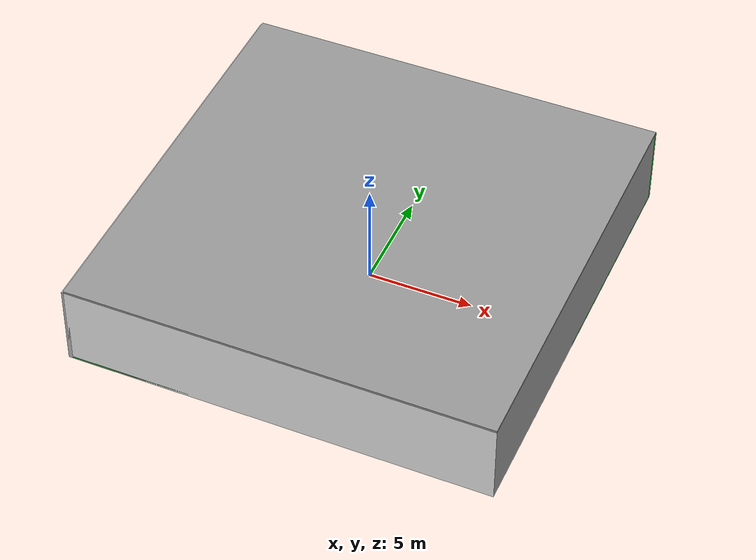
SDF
<sdf version="1.4">
 <world name="default">
  <physics type="ode">
   <max_step_size>0.001</max_step_size>
   <real_time_factor>1</real_time_factor>
   <real_time_update_rate>1000</real_time_update_rate>
   <gravity>0 0 -9.8</gravity>
  </physics>
  <scene><ambient>0.4 0.4 0.4 1</ambient><background>0.7 0.7 0.7 1</background><shadows>1</shadows></scene>
  <model name="Surrounding">
   <static>1</static>
   <link name="Ceiling">
    <collision name="Ceiling_Collision"><geometry><box><size>20 20 0.1</size></box></geometry></collision>
    <visual name="Ceiling_Visual">
     <geometry><box><size>20 20 0.1</size></box></geometry>
     <material>
      <script><uri>file://media/materials/scripts/gazebo.material</uri><name>Gazebo/GreyGradientSky</name></script>
     </material>
    </visual>
    <pose>0 0 4.05 0 0 0</pose>
   </link>
   <link name="Wall_South">
    <collision name="Wall_South_Collision">
     <geometry><box><size>20 0 4</size></box></geometry>
     <pose>0 0 2 0 -0 0</pose>
    </collision>
    <visual name="Wall_South_Visual">
     <pose>0 0 2 0 -0 0</pose>
     <geometry><box><size>20 0 4</size></box></geometry>
     <material>
      <script><uri>file://media/materials/scripts/gazebo.material</uri><name>Gazebo/WhiteGlow</name></script>
     </material>
    </visual>
    <velocity_decay><linear>0</linear><angular>0</angular></velocity_decay>
    <pose>0 -10 0 0 -0 0</pose>
   </link>
   <link name="Wall_East">
    <collision name="Wall_21_Collision">
     <geometry><box><size>20 0 4</size></box></geometry>
     <pose>0 0 2 0 -0 0</pose>
    </collision>
    <visual name="Wall_21_Visual">
     <pose>0 0 2 0 -0 0</pose>
     <geometry><box><size>20 0 4</size></box></geometry>
     <material>
      <script><uri>file://media/materials/scripts/gazebo.material</uri><name>Gazebo/GreyGradientSky</name></script>
     </material>
    </visual>
    <velocity_decay><linear>0</linear><angular>0</angular></velocity_decay>
    <pose>10 0 0 0 -0 1.5708</pose>
   </link>
   <link name="Wall_North">
    <collision name="Wall_22_Collision">
     <geometry><box><size>20 0.2 4</size></box></geometry>
     <pose>0 0 2 0 -0 0</pose>
    </collision>
    <visual name="Wall_22_Visual">
     <pose>0 0 2 0 -0 0</pose>
     <geometry><box><size>20 0.2 4</size></box></geometry>
     <material>
      <script><uri>file://media/materials/scripts/gazebo.material</uri><name>Gazebo/GreenGlow</name></script>
     </material>
    </visual>
    <velocity_decay><linear>0</linear><angular>0</angular></velocity_decay>
    <pose>0 10 0 0 -0 0</pose>
   </link>
   <link name="Wall_West">
    <collision name="Wall_23_Collision">
     <geometry><box><size>20 0.2 4</size></box></geometry>
     <pose>0 0 2 0 -0 0</pose>
    </collision>
    <visual name="Wall_23_Visual">
     <pose>0 0 2 0 -0 0</pose>
     <geometry><box><size>20 0.2 4</size></box></geometry>
     <material>
      <script><uri>file://media/materials/scripts/gazebo.material</uri><name>Gazebo/PioneerBody</name></script>
     </material>
    </visual>
    <velocity_decay><linear>0</linear><angular>0</angular></velocity_decay>
    <pose>-10 0 0 0 0 -1.5708</pose>
   </link>
   <link name="Ground_link">
    <collision name="collision">
     <pose>0 0 .05 0 -0 0</pose>
     <geometry><box><size>20 20 0.1</size></box></geometry>
    </collision>
    <visual name="visual">
     <pose>0 0 .05 0 -0 0</pose>
     <geometry><box><size>20 20 0.1</size></box></geometry>
     <material>
      <script><uri>file://media/materials/scripts/gazebo.material</uri><name>Gazebo/GreenGlow</name></script>
     </material>
    </visual>
   </link>
   <static>1</static>
  </model>
  <spherical_coordinates>
   <surface_model>EARTH_WGS84</surface_model>
   <latitude_deg>0</latitude_deg>
   <longitude_deg>0</longitude_deg>
   <elevation>0</elevation>
   <heading_deg>0</heading_deg>
  </spherical_coordinates>
  <light name="lightball_0" type="diffuse">
   <diffuse>0.8 0.8 0.8 1</diffuse>
   <specular>0.2 0.2 0.2 1</specular>
   <attenuation>
    <range>100</range>
    <constant>0.7</constant>
    <linear>0.01</linear>
    <quadratic>0.001</quadratic>
   </attenuation>
   <direction>-0.5 0.1 -0.9</direction>
   <pose>-8.69995731747 1.44536363598 3.04308593884 0 0 0</pose>
  </light>
  <light name="lightball_1" type="diffuse">
   <diffuse>0.8 0.8 0.8 1</diffuse>
   <specular>0.2 0.2 0.2 1</specular>
   <attenuation>
    <range>100</range>
    <constant>0.7</constant>
    <linear>0.01</linear>
    <quadratic>0.001</quadratic>
   </attenuation>
   <direction>-0.5 0.1 -0.9</direction>
   <pose>5.70711311474 -9.05817177355 1.42338807702 0 0 0</pose>
  </light>
  <light name="lightball_2" type="diffuse">
   <diffuse>0.8 0.8 0.8 1</diffuse>
   <specular>0.2 0.2 0.2 1</specular>
   <attenuation>
    <range>100</range>
    <constant>0.7</constant>
    <linear>0.01</linear>
    <quadratic>0.001</quadratic>
   </attenuation>
   <direction>-0.5 0.1 -0.9</direction>
   <pose>5.77941342738 6.91278033034 2.75319708265 0 0 0</pose>
  </light>
  <light name="lightball_3" type="diffuse">
   <diffuse>0.8 0.8 0.8 1</diffuse>
   <specular>0.2 0.2 0.2 1</specular>
   <attenuation>
    <range>100</range>
    <constant>0.7</constant>
    <linear>0.01</linear>
    <quadratic>0.001</quadratic>
   </attenuation>
   <direction>-0.5 0.1 -0.9</direction>
   <pose>-1.31628277338 -2.20205349931 0.665807014747 0 0 0</pose>
  </light>
  <light name="lightball_4" type="diffuse">
   <diffuse>0.8 0.8 0.8 1</diffuse>
   <specular>0.2 0.2 0.2 1</specular>
   <attenuation>
    <range>100</range>
    <constant>0.7</constant>
    <linear>0.01</linear>
    <quadratic>0.001</quadratic>
   </attenuation>
   <direction>-0.5 0.1 -0.9</direction>
   <pose>4.72593437281 -7.71404359476 2.32447297717 0 0 0</pose>
  </light>
  <light name="lightball_5" type="diffuse">
   <diffuse>0.8 0.8 0.8 1</diffuse>
   <specular>0.2 0.2 0.2 1</specular>
   <attenuation>
    <range>100</range>
    <constant>0.7</constant>
    <linear>0.01</linear>
    <quadratic>0.001</quadratic>
   </attenuation>
   <direction>-0.5 0.1 -0.9</direction>
   <pose>-9.78879563514 -9.45386834187 1.80847064352 0 0 0</pose>
  </light>
  <light name="lightball_6" type="diffuse">
   <diffuse>0.8 0.8 0.8 1</diffuse>
   <specular>0.2 0.2 0.2 1</specular>
   <attenuation>
    <range>100</range>
    <constant>0.7</constant>
    <linear>0.01</linear>
    <quadratic>0.001</quadratic>
   </attenuation>
   <direction>-0.5 0.1 -0.9</direction>
   <pose>1.43507544315 -7.57027231398 1.24087494968 0 0 0</pose>
  </light>
  <light name="lightball_7" type="diffuse">
   <diffuse>0.8 0.8 0.8 1</diffuse>
   <specular>0.2 0.2 0.2 1</specular>
   <attenuation>
    <range>100</range>
    <constant>0.7</constant>
    <linear>0.01</linear>
    <quadratic>0.001</quadratic>
   </attenuation>
   <direction>-0.5 0.1 -0.9</direction>
   <pose>-4.98669271714 4.97160414277 1.44371345885 0 0 0</pose>
  </light>
  <light name="lightball_8" type="diffuse">
   <diffuse>0.8 0.8 0.8 1</diffuse>
   <specular>0.2 0.2 0.2 1</specular>
   <attenuation>
    <range>100</range>
    <constant>0.7</constant>
    <linear>0.01</linear>
    <quadratic>0.001</quadratic>
   </attenuation>
   <direction>-0.5 0.1 -0.9</direction>
   <pose>-9.84590412029 6.17736498859 2.50097686475 0 0 0</pose>
  </light>
  <light name="lightball_9" type="diffuse">
   <diffuse>0.8 0.8 0.8 1</diffuse>
   <specular>0.2 0.2 0.2 1</specular>
   <attenuation>
    <range>100</range>
    <constant>0.7</constant>
    <linear>0.01</linear>
    <quadratic>0.001</quadratic>
   </attenuation>
   <direction>-0.5 0.1 -0.9</direction>
   <pose>-8.33738646338 -7.15401572392 0.999474560675 0 0 0</pose>
  </light>
  <include>
   <uri>model://textured_shapes</uri>
   <pose>-4.63841915924 3.81030486762 0 0 0 3.05627235446</pose>
  </include>
  <include>
   <uri>model://textured_shapes</uri>
   <pose>1.01614778671 3.99077108001 0 0 0 1.81027713992</pose>
  </include>
  <include>
   <uri>model://robocup_3Dsim_goal</uri>
   <pose>0.547050134349 7.04845208286 0 0 0 1.08225839193</pose>
  </include>
  <include><uri>model://table</uri><pose>5.64383759846 -4.8904213817 0 0 0 1.95239949937</pose></include>
  <include><uri>model://cabinet</uri><pose>7.68187152028 1.89924813763 0 0 0 1.71901313558</pose></include>
  <include>
   <uri>model://construction_cone</uri>
   <pose>8.44056126798 3.33878648033 0 0 0 1.63199620562</pose>
  </include>
 </world>
</sdf>

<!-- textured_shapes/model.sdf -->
<sdf version="1.6">
  <model name="textured_shapes">
    <pose>0 0 0.5 0 0 0</pose>
    <link name="box">
      <pose>0 -1.5 0 0 0 0</pose>
      <collision name="collision">
        <geometry>
          <box>
            <size>1 1 1</size>
          </box>
        </geometry>
      </collision>
      <visual name="visual">
        <geometry>
          <box>
            <size>1 1 1</size>
          </box>
        </geometry>
        <material>
          <script>
            <uri>model://../model_source/models/textured_shapes/materials/scripts</uri>
            <uri>model://../model_source/models/textured_shapes/materials/textures</uri>
            <name>TexturedShape/Squares</name>
          </script>
        </material>
      </visual>
    </link>
    <link name="sphere">
      <collision name="collision">
        <geometry>
          <sphere>
            <radius>0.5</radius>
          </sphere>
        </geometry>
      </collision>
      <visual name="visual">
        <geometry>
          <sphere>
            <radius>0.5</radius>
          </sphere>
        </geometry>
        <material>
          <script>
            <uri>model://../model_source/models/textured_shapes/materials/scripts</uri>
            <uri>model://../model_source/models/textured_shapes/materials/textures</uri>
            <name>TexturedShape/Squares</name>
          </script>
        </material>
      </visual>
    </link>
    <link name="cylinder">
      <pose>0 1.5 0 0 0 0</pose>
      <collision name="collision">
        <geometry>
          <cylinder>
            <radius>0.5</radius>
            <length>1</length>
          </cylinder>
        </geometry>
      </collision>
      <visual name="visual">
        <geometry>
          <cylinder>
            <radius>0.5</radius>
            <length>1</length>
          </cylinder>
        </geometry>
        <material>
          <script>
            <uri>model://../model_source/models/textured_shapes/materials/scripts</uri>
            <uri>model://../model_source/models/textured_shapes/materials/textures</uri>
            <name>TexturedShape/Squares</name>
          </script>
        </material>
      </visual>
    </link>
  </model>
</sdf>

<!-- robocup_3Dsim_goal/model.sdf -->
<sdf version="1.5">
  <model name="robocup_3d_goal">
    <static>true</static>
    <link name="left_post">
      <pose>0 1.05 0.45 0 0 0</pose>
      <collision name="collision">
        <geometry>
          <cylinder>
            <radius>0.05</radius>
            <length>0.9</length>
          </cylinder>
        </geometry>
      </collision>
      <visual name="visual">
        <geometry>
          <cylinder>
            <radius>0.05</radius>
            <length>0.9</length>
          </cylinder>
        </geometry>
        <material>
          <script>
            <uri>file://media/materials/scripts/gazebo.material</uri>
            <name>Gazebo/ZincYellow</name>
          </script>
        </material>
      </visual>
    </link>
    <link name="left_support_horiz_lower">
      <pose>0.30 1.05 0.01 0 0 0</pose>
      <collision name="collision">
        <geometry>
          <box>
            <size>0.50 0.02 0.02</size>
          </box>
        </geometry>
      </collision>
      <visual name="visual">
        <geometry>
          <box>
            <size>0.50 0.02 0.02</size>
          </box>
        </geometry>
        <material>
          <script>
            <uri>file://media/materials/scripts/gazebo.material</uri>
            <name>Gazebo/White</name>
          </script>
        </material>
      </visual>
    </link>
    <link name="left_support_horiz_upper">
      <pose>0.30 1.05 0.79 0 0 0</pose>
      <collision name="collision">
        <geometry>
          <box>
            <size>0.50 0.02 0.02</size>
          </box>
        </geometry>
      </collision>
      <visual name="visual">
        <geometry>
          <box>
            <size>0.50 0.02 0.02</size>
          </box>
        </geometry>
        <material>
          <script>
            <uri>file://media/materials/scripts/gazebo.material</uri>
            <name>Gazebo/White</name>
          </script>
        </material>
      </visual>
    </link>
    <link name="left_support_vertical">
      <pose>0.56 1.05 0.4 0 1.5708 0</pose>
      <collision name="collision">
        <geometry>
          <box>
            <size>0.80 0.02 0.02</size>
          </box>
        </geometry>
      </collision>
      <visual name="visual">
        <geometry>
          <box>
            <size>0.80 0.02 0.02</size>
          </box>
        </geometry>
        <material>
          <script>
            <uri>file://media/materials/scripts/gazebo.material</uri>
            <name>Gazebo/White</name>
          </script>
        </material>
      </visual>
    </link>
    <link name="right_support_horiz_lower">
      <pose>0.30 -1.05 0.01 0 0 0</pose>
      <collision name="collision">
        <geometry>
          <box>
            <size>0.50 0.02 0.02</size>
          </box>
        </geometry>
      </collision>
      <visual name="visual">
        <geometry>
          <box>
            <size>0.50 0.02 0.02</size>
          </box>
        </geometry>
        <material>
          <script>
            <uri>file://media/materials/scripts/gazebo.material</uri>
            <name>Gazebo/White</name>
          </script>
        </material>
      </visual>
    </link>
    <link name="right_support_horiz_upper">
      <pose>0.30 -1.05 0.79 0 0 0</pose>
      <collision name="collision">
        <geometry>
          <box>
            <size>0.50 0.02 0.02</size>
          </box>
        </geometry>
      </collision>
      <visual name="visual">
        <geometry>
          <box>
            <size>0.50 0.02 0.02</size>
          </box>
        </geometry>
        <material>
          <script>
            <uri>file://media/materials/scripts/gazebo.material</uri>
            <name>Gazebo/White</name>
          </script>
        </material>
      </visual>
    </link>
    <link name="right_support_vertical">
      <pose>0.56 -1.05 0.4 0 1.5708 0</pose>
      <collision name="collision">
        <geometry>
          <box>
            <size>0.80 0.02 0.02</size>
          </box>
        </geometry>
      </collision>
      <visual name="visual">
        <geometry>
          <box>
            <size>0.80 0.02 0.02</size>
          </box>
        </geometry>
        <material>
          <script>
            <uri>file://media/materials/scripts/gazebo.material</uri>
            <name>Gazebo/White</name>
          </script>
        </material>
      </visual>
    </link>
    <link name="center_support_horiz_lower">
      <pose>0.56 0 0.01 0 1.5708 0</pose>
      <collision name="collision">
        <geometry>
          <box>
            <size>0.02 2.08 0.02</size>
          </box>
        </geometry>
      </collision>
      <visual name="visual">
        <geometry>
          <box>
            <size>0.02 2.08 0.02</size>
          </box>
        </geometry>
        <material>
          <script>
            <uri>file://media/materials/scripts/gazebo.material</uri>
            <name>Gazebo/White</name>
          </script>
        </material>
      </visual>
    </link>
    <link name="center_support_horiz_upper">
      <pose>0.56 0 0.79 0 1.5708 0</pose>
      <collision name="collision">
        <geometry>
          <box>
            <size>0.02 2.08 0.02</size>
          </box>
        </geometry>
      </collision>
      <visual name="visual">
        <geometry>
          <box>
            <size>0.02 2.08 0.02</size>
          </box>
        </geometry>
        <material>
          <script>
            <uri>file://media/materials/scripts/gazebo.material</uri>
            <name>Gazebo/White</name>
          </script>
        </material>
      </visual>
    </link>
    <link name="right_post">
      <pose>0 -1.05 0.45 0 0 0</pose>
      <collision name="collision">
        <geometry>
          <cylinder>
            <radius>0.05</radius>
            <length>0.9</length>
          </cylinder>
        </geometry>
      </collision>
      <visual name="visual">
        <geometry>
          <cylinder>
            <radius>0.05</radius>
            <length>0.9</length>
          </cylinder>
        </geometry>
        <material>
          <script>
            <uri>file://media/materials/scripts/gazebo.material</uri>
            <name>Gazebo/ZincYellow</name>
          </script>
        </material>
      </visual>
    </link>
    <link name="crossbar">
      <pose>0 0 0.85 1.57 1.57 0</pose>
      <collision name="collision">
        <geometry>
          <cylinder>
            <radius>0.05</radius>
            <length>2.0</length>
          </cylinder>
        </geometry>
      </collision>
      <visual name="visual">
        <geometry>
          <cylinder>
            <radius>0.05</radius>
            <length>2.0</length>
          </cylinder>
        </geometry>
        <material>
          <script>
            <uri>file://media/materials/scripts/gazebo.material</uri>
            <name>Gazebo/ZincYellow</name>
          </script>
        </material>
      </visual>
    </link>
    <link name="center_net">
      <pose>0.56 0 0.40 0 0 0</pose>
      <collision name="collision">
        <geometry>
          <box>
            <size>0.01 2.1 0.80</size>
          </box>
        </geometry>
      </collision>
      <visual name="visual">
        <geometry>
          <box>
            <size>0.01 2.1 0.80</size>
          </box>
        </geometry>
        <material>
          <script>
            <uri>model://../model_source/models/robocup09_spl_field/materials/scripts/</uri>
            <uri>model://../model_source/models/robocup09_spl_field/materials/textures/</uri>
            <name>RoboCup/Net</name>
          </script>
        </material>
      </visual>
    </link>
    <link name="left_net">
      <pose>0.30 1.05 0.40 0 0 0</pose>
      <collision name="collision">
        <geometry>
          <box>
            <size>0.50 0.01 0.76</size>
          </box>
        </geometry>
      </collision>
      <visual name="visual">
        <geometry>
          <box>
            <size>0.50 0.01 0.76</size>
          </box>
        </geometry>
        <material>
          <script>
            <uri>model://../model_source/models/robocup09_spl_field/materials/scripts/</uri>
            <uri>model://../model_source/models/robocup09_spl_field/materials/textures/</uri>
            <name>RoboCup/Net</name>
          </script>
        </material>
      </visual>
    </link>
    <link name="right_net">
      <pose>0.30 -1.05 0.40 0 0 0</pose>
      <collision name="collision">
        <geometry>
          <box>
            <size>0.50 0.01 0.76</size>
          </box>
        </geometry>
      </collision>
      <visual name="visual">
        <geometry>
          <box>
            <size>0.50 0.01 0.76</size>
          </box>
        </geometry>
        <material>
          <script>
            <uri>model://../model_source/models/robocup09_spl_field/materials/scripts/</uri>
            <uri>model://../model_source/models/robocup09_spl_field/materials/textures/</uri>
            <name>RoboCup/Net</name>
          </script>
        </material>
      </visual>
    </link>
  </model>
</sdf>

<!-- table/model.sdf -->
<sdf version="1.5">
  <model name="table">
    <static>true</static>
    <link name="link">
      <collision name="surface">
        <pose>0 0 1.0 0 0 0</pose>
        <geometry>
          <box>
            <size>1.5 0.8 0.03</size>
          </box>
        </geometry>
        <surface>
          <friction>
            <ode>
              <mu>0.6</mu>
              <mu2>0.6</mu2>
            </ode>
          </friction>
        </surface>
      </collision>
      <visual name="visual1">
        <pose>0 0 1.0 0 0 0</pose>
        <geometry>
          <box>
            <size>1.5 0.8 0.03</size>
          </box>
        </geometry>
        <material>
          <script>
            <uri>model://media/materials/scripts/gazebo.material</uri>
            <name>Gazebo/Wood</name>
          </script>
        </material>
      </visual>
      <collision name="front_left_leg">
        <pose>0.68 0.38 0.5 0 0 0</pose>
        <geometry>
          <cylinder>
            <radius>0.02</radius>
            <length>1.0</length>
          </cylinder>
        </geometry>
      </collision>
      <visual name="front_left_leg">
        <pose>0.68 0.38 0.5 0 0 0</pose>
        <geometry>
          <cylinder>
            <radius>0.02</radius>
            <length>1.0</length>
          </cylinder>
        </geometry>
        <material>
          <script>
            <uri>model://media/materials/scripts/gazebo.material</uri>
            <name>Gazebo/Grey</name>
          </script>
        </material>
      </visual>
      <collision name="front_right_leg">
        <pose>0.68 -0.38 0.5 0 0 0</pose>
        <geometry>
          <cylinder>
            <radius>0.02</radius>
            <length>1.0</length>
          </cylinder>
        </geometry>
      </collision>
      <visual name="front_right_leg">
        <pose>0.68 -0.38 0.5 0 0 0</pose>
        <geometry>
          <cylinder>
            <radius>0.02</radius>
            <length>1.0</length>
          </cylinder>
        </geometry>
        <material>
          <script>
            <uri>model://media/materials/scripts/gazebo.material</uri>
            <name>Gazebo/Grey</name>
          </script>
        </material>
      </visual>
      <collision name="back_right_leg">
        <pose>-0.68 -0.38 0.5 0 0 0</pose>
        <geometry>
          <cylinder>
            <radius>0.02</radius>
            <length>1.0</length>
          </cylinder>
        </geometry>
      </collision>
      <visual name="back_right_leg">
        <pose>-0.68 -0.38 0.5 0 0 0</pose>
        <geometry>
          <cylinder>
            <radius>0.02</radius>
            <length>1.0</length>
          </cylinder>
        </geometry>
        <material>
          <script>
            <uri>model://media/materials/scripts/gazebo.material</uri>
            <name>Gazebo/Grey</name>
          </script>
        </material>
      </visual>
      <collision name="back_left_leg">
        <pose>-0.68 0.38 0.5 0 0 0</pose>
        <geometry>
          <cylinder>
            <radius>0.02</radius>
            <length>1.0</length>
          </cylinder>
        </geometry>
      </collision>
      <visual name="back_left_leg">
        <pose>-0.68 0.38 0.5 0 0 0</pose>
        <geometry>
          <cylinder>
            <radius>0.02</radius>
            <length>1.0</length>
          </cylinder>
        </geometry>
        <material>
          <script>
            <uri>model://media/materials/scripts/gazebo.material</uri>
            <name>Gazebo/Grey</name>
          </script>
        </material>
      </visual>
    </link>
  </model>
</sdf>

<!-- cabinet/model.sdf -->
<sdf version="1.5">
  <model name="cabinet">
    <static>true</static>
    <link name="cabinet_bottom_plate">
      <inertial>
        <pose>0 0 -1 0 0 0</pose>
        <inertia>
          <ixx>2.050000</ixx>
          <ixy>0</ixy>
          <ixz>0</ixz>
          <iyy>2.050000</iyy>
          <iyz>0</iyz>
          <izz>2.050000</izz>
        </inertia>
        <mass>25.000000</mass>
      </inertial>
      <collision name="cabinet_bottom_plate_geom">
        <pose>0 0 0.010000 0 0 0</pose>
        <geometry>
          <box>
            <size>0.450000 0.450000 0.020000</size>
          </box>
        </geometry>
      </collision>
      <visual name="cabinet_bottom_plate_geom_visual">
        <pose>0 0 0.010000 0 0 0</pose>
        <geometry>
          <box>
            <size>0.450000 0.450000 0.020000</size>
          </box>
        </geometry>
        <material>
          <script>
            <uri>model://media/materials/scripts/gazebo.material</uri>
            <name>Gazebo/Wood</name>
          </script>
        </material>
      </visual>
      <collision name="cabinet_bottom_plate_geom_cabinet_back_plate">
        <pose>0.235000 0 0.510000 0 0 0</pose>
        <geometry>
          <box>
            <size>0.020000 0.450000 1.020000</size>
          </box>
        </geometry>
      </collision>
      <visual name="cabinet_bottom_plate_geom_cabinet_back_plate_visual">
        <pose>0.235000 0 0.510000 0 0 0</pose>
        <geometry>
          <box>
            <size>0.020000 0.450000 1.020000</size>
          </box>
        </geometry>
        <material>
          <script>
            <uri>model://media/materials/scripts/gazebo.material</uri>
            <name>Gazebo/Wood</name>
          </script>
        </material>
      </visual>
      <collision name="cabinet_bottom_plate_geom_cabinet_left_plate">
        <pose>0 0.235000 0.510000 0 0 0</pose>
        <geometry>
          <box>
            <size>0.450000 0.020000 1.020000</size>
          </box>
        </geometry>
      </collision>
      <visual name="cabinet_bottom_plate_geom_cabinet_left_plate_visual">
        <pose>0 0.235000 0.510000 0 0 0</pose>
        <geometry>
          <box>
            <size>0.450000 0.020000 1.020000</size>
          </box>
        </geometry>
        <material>
          <script>
            <uri>model://media/materials/scripts/gazebo.material</uri>
            <name>Gazebo/Wood</name>
          </script>
        </material>
      </visual>
      <collision name="cabinet_bottom_plate_geom_cabinet_middle_plate">
        <pose>0 0 0.510000 0 0 0</pose>
        <geometry>
          <box>
            <size>0.450000 0.450000 0.020000</size>
          </box>
        </geometry>
      </collision>
      <visual name="cabinet_bottom_plate_geom_cabinet_middle_plate_visual">
        <pose>0 0 0.510000 0 0 0</pose>
        <geometry>
          <box>
            <size>0.450000 0.450000 0.020000</size>
          </box>
        </geometry>
        <material>
          <script>
            <uri>model://media/materials/scripts/gazebo.material</uri>
            <name>Gazebo/Wood</name>
          </script>
        </material>
      </visual>
      <collision name="cabinet_bottom_plate_geom_cabinet_right_plate">
        <pose>0 -0.235000 0.510000 0 0 0</pose>
        <geometry>
          <box>
            <size>0.450000 0.020000 1.020000</size>
          </box>
        </geometry>
      </collision>
      <visual name="cabinet_bottom_plate_geom_cabinet_right_plate_visual">
        <pose>0 -0.235000 0.510000 0 0 0</pose>
        <geometry>
          <box>
            <size>0.450000 0.020000 1.020000</size>
          </box>
        </geometry>
        <material>
          <script>
            <uri>model://media/materials/scripts/gazebo.material</uri>
            <name>Gazebo/Wood</name>
          </script>
        </material>
      </visual>
      <collision name="cabinet_bottom_plate_geom_cabinet_top_plate">
        <pose>0 0 1.010000 0 0 0</pose>
        <geometry>
          <box>
            <size>0.450000 0.450000 0.020000</size>
          </box>
        </geometry>
      </collision>
      <visual name="cabinet_bottom_plate_geom_cabinet_top_plate_visual">
        <pose>0 0 1.010000 0 0 0</pose>
        <geometry>
          <box>
            <size>0.450000 0.450000 0.020000</size>
          </box>
        </geometry>
        <material>
          <script>
            <uri>model://media/materials/scripts/gazebo.material</uri>
            <name>Gazebo/Wood</name>
          </script>
        </material>
      </visual>
    </link>
  </model>
</sdf>

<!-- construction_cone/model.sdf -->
<sdf version="1.5">
  <model name="Construction Cone">
    <link name="link">
      <collision name="collision">
        <geometry>
          <mesh>
            <scale>10 10 10</scale>
            <uri>file://isr-testbed/construction_cone/meshes/construction_cone.dae</uri>
          </mesh>
        </geometry>
      </collision>
      <visual name="visual">
        <geometry>
          <mesh>
            <scale>10 10 10</scale>
            <uri>file://isr-testbed/construction_cone/meshes/construction_cone.dae</uri>
          </mesh>
        </geometry>
      </visual>
    </link>
  </model>
</sdf>
